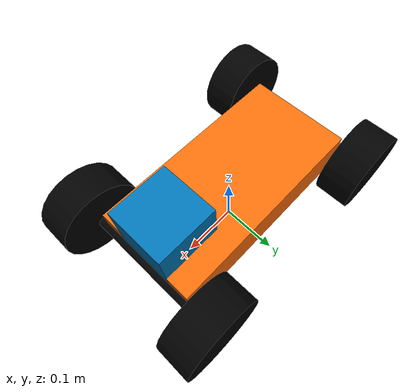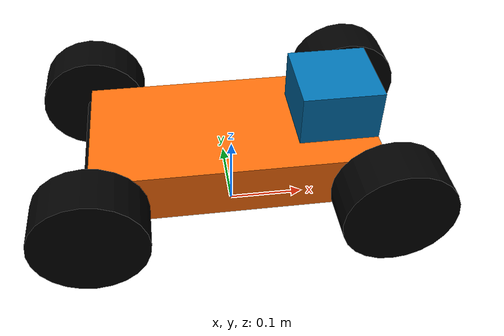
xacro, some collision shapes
<?xml version="1.0"?>
<robot name="tas_car" xmlns:xacro="http://www.ros.org/wiki/xacro">
    <!-- CAR DESCRIPTION -->

        <!-- Physical properties. -->
        <xacro:property name="degrees_21" value="0.3665191429"/>
        <xacro:property name="degrees_45" value="0.785398163"/>
        <xacro:property name="degrees_90" value="1.57079633"/>
        <xacro:property name="PI" value="3.1415926535897931"/>

        <!-- Chassis. -->
        <xacro:property name="chassis_length" value="0.358"/>
        <xacro:property name="chassis_width" value="0.18"/>
        <xacro:property name="chassis_height" value="0.068"/>
        <xacro:property name="chassis_mass" value="3"/>

        <!-- Axle. -->
        <xacro:property name="axle_length" value="${chassis_width + 0.02}" />
        <xacro:property name="axle_radius" value="0.01" />
        <xacro:property name="axle_mass" value="0.2" />

        <!-- Motors. -->
        <xacro:property name="front_axle_eff_limit" value="2" />
        <xacro:property name="rear_axle_eff_limit" value="8" />
        <xacro:property name="axle_vel_limit" value="100" />

        <!-- These constants are used to simulate a  Savox SV-0235MG servo operated at
       7.4 V. servo_stall_torque is measured in N m. servo_no_load_speed is
       measured in rad/s. -->
        <!-- produces 486.1 oz-in = 3.432620346181713 n-m of torque -->
        <!-- no load speed 0.13 sec/60 deg -> (1/0.13)*60 deg/sec = 8.05536578 rad/s -->
        <xacro:property name="servo_stall_torque" value="3.432620346181713" />
        <xacro:property name="servo_no_load_speed" value="8.05536578" />

        <!-- Wheels. -->
        <xacro:property name="wheel_width" value="0.059"/>
        <xacro:property name="wheel_radius" value="0.0695"/>
        <xacro:property name="wheel_pos" value="0.179"/>
        <xacro:property name="wheel_mass" value="0.5"/>

        <xacro:property name="wheelOffsetX" value="0.179" />
        <xacro:property name="wheelOffsetY" value="0.1815" />

        <!-- Camera. -->
        <xacro:property name="cameraSize" value="0.05"/>
        <xacro:property name="cameraMass" value="0.1"/>

        <!-- Include files. -->
        <xacro:include filename="$(find tas_car_description)/urdf/tas_car.gazebo" />
        <xacro:include filename="$(find tas_car_description)/urdf/materials.xacro" />
        <xacro:include filename="$(find tas_car_description)/urdf/macros.xacro" />

        <!-- Robot description. -->

        <!-- The physics engine does not accept a base_link with inertia. Add a simple link without inertia and make a joint between it and the chassis. -->
        <link name="base_link">
        </link>

        <joint name="base_joint" type="fixed">
            <parent link="base_link"/>
            <child link="chassis"/>
        </joint>

        <link name="chassis">
            <collision>
                <origin xyz="0 0 ${wheel_radius}" rpy="0 0 0"/>
                <geometry>
                  <box size="${chassis_length} ${chassis_width} ${chassis_height}"/>
                </geometry>
            </collision>

            <visual>
                <origin xyz="0 0 ${wheel_radius + chassis_height/2}" rpy="0 0 0"/>
                <geometry>
                    <box size="${chassis_length} ${chassis_width} ${chassis_height}"/>
                </geometry>
                <material name="orange"/>
            </visual>

            <inertial>
                <origin xyz="0 0 ${wheel_radius}" rpy="0 0 0"/>
                <mass value="${chassis_mass}"/>
                <box_inertia m="${chassis_mass}" x="${chassis_length}" y="${chassis_width}" z="${chassis_height}"/>
            </inertial>
        </link>

        <!-- Create the axles on which we put the wheels. -->
        <axle fr_prefix="front" fr_position="1" />
        <axle fr_prefix="rear" fr_position="-1" />

        <front_wheel    lr_prefix="left"
                        fr_prefix="front"
                        lr_position="-1"
                        fr_position="1"
                        wheel_radius="${wheel_radius}"
                        wheel_mass="${wheel_mass}"
                        axle_eff_limit="${front_axle_eff_limit}"
        />

        <front_wheel    lr_prefix="right"
                        fr_prefix="front"
                        lr_position="1"
                        fr_position="1"
                        wheel_radius="${wheel_radius}"
                        wheel_mass="${wheel_mass}"
                        axle_eff_limit="${front_axle_eff_limit}"
        />

        <rear_wheel lr_prefix="right"
                    fr_prefix="rear"
                    lr_position="1"
                    fr_position="-1"
                    wheel_radius="${wheel_radius}"
                    wheel_mass="${wheel_mass}"
                    axle_eff_limit="${front_axle_eff_limit}"
        />

        <rear_wheel lr_prefix="left"
                    fr_prefix="rear"
                    lr_position="-1"
                    fr_position="-1"
                    wheel_radius="${wheel_radius}"
                    wheel_mass="${wheel_mass}"
                    axle_eff_limit="${front_axle_eff_limit}"
        />

    <!-- CAR DESCRIPTION END -->

    <!-- SENSORS -->

        <!-- Camera. -->

        <!-- Laser Scanner. -->
        <joint name="hokuyo_joint" type="fixed">
            <axis xyz="0 1 0" />
            <origin xyz="${-cameraSize+chassis_length/2} 0 ${cameraSize+wheel_radius + chassis_height/2}" rpy="0 0 0"/>
            <parent link="chassis"/>
            <child link="hokuyo_link"/>
        </joint>

        <!-- Hokuyo Laser -->
        <link name="hokuyo_link">
            <collision>
                <origin xyz="0 0 0" rpy="0 0 0"/>
                <geometry>
                    <box size="0.1 0.1 0.1"/>
                </geometry>
            </collision>

            <visual>
                <origin xyz="0 0 0" rpy="0 0 0"/>
                <geometry>
                    <mesh filename="file://$(find tas_car_description)/meshes/hokuyo.dae"/>
                </geometry>
            </visual>

            <inertial>
                <mass value="1e-5" />
                <origin xyz="0 0 0" rpy="0 0 0"/>
                <inertia ixx="1e-6" ixy="0" ixz="0" iyy="1e-6" iyz="0" izz="1e-6" />
            </inertial>
        </link>
    <!-- SENSOR END -->
</robot>

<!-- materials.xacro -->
<robot>
    <material name="black">
       <color rgba="0.0 0.0 0.0 1.0"/>
    </material>

    <material name="blue">
       <color rgba="0.0 0.0 0.8 1.0"/>
    </material>

    <material name="green">
       <color rgba="0.0 0.8 0.0 1.0"/>
    </material>

    <material name="grey">
       <color rgba="0.2 0.2 0.2 1.0"/>
    </material>

    <material name="orange">
       <color rgba="${255/255} ${108/255} ${10/255} 1.0"/>
    </material>

    <material name="brown">
        <color rgba="${222/255} ${207/255} ${195/255} 1.0"/>
    </material>

    <material name="red">
        <color rgba="0.8 0.0 0.0 1.0"/>
    </material>

    <material name="white">
        <color rgba="1.0 1.0 1.0 1.0"/>
    </material>

    <material name="chassis_mat">
        <color rgba="0.5 0.5 0.5 1"/>
    </material>
</robot>

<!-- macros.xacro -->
<robot>

<!-- Null inertia macro. -->
    <macro name="null_inertial">
        <inertial>
            <origin xyz="0 0 0" rpy="0 0 0"/>
            <mass value="0.001"/>
            <inertia ixx="0.001" ixy="0" ixz="0" iyy="0.001" iyz="0" izz="0.001"/>
        </inertial>
    </macro>

<!-- Cylinder inertia macro. -->
    <macro name="cylinder_inertia" params="m r h">
        <inertia  ixx="${m*(3*r*r+h*h)/12}" ixy = "0" ixz = "0" iyy="${m*(3*r*r+h*h)/12}" iyz = "0" izz="${m*r*r/2}" />
    </macro>

<!-- Box inertia macro. -->
    <macro name="box_inertia" params="m x y z">
        <inertia  ixx="${m*(y*y+z*z)/12}" ixy = "0" ixz = "0" iyy="${m*(x*x+z*z)/12}" iyz = "0" izz="${m*(x*x+z*z)/12}" />
    </macro>

<!-- Sphere inertia macro. -->
    <macro name="sphere_inertia" params="m r">
        <inertia  ixx="${2*m*r*r/5}" ixy = "0" ixz = "0" iyy="${2*m*r*r/5}" iyz = "0" izz="${2*m*r*r/5}" />
    </macro>

<!-- Axle macro. -->
    <macro name="axle" params="fr_prefix fr_position">
        <link name="${fr_prefix}_axle">
            <collision>
                <origin xyz="0 0 0" rpy="${PI/2} 0 0" />
                <geometry>
                    <cylinder length="${axle_length}" radius="${axle_radius}"/>
                </geometry>
            </collision>

            <visual>
                <origin xyz="0 0 0" rpy="${PI/2} 0 0" />
                <geometry>
                    <cylinder length="${axle_length}" radius="${axle_radius}"/>
                </geometry>
                <material name="black"/>
            </visual>

            <inertial>
                <origin xyz="0 0 0" rpy="${PI/2} 0 0" />
                <mass value="${wheel_mass}"/>
                <cylinder_inertia m="${axle_mass}" r="${axle_radius}" h="${axle_length}"/>
            </inertial>
        </link>

        <joint name="${fr_prefix}_axle_joint" type="fixed">
            <origin xyz="${fr_position * chassis_length / 2} 0 ${wheel_radius + chassis_height/2}" rpy="0 0 0" />
            <parent link="chassis"/>
            <child link="${fr_prefix}_axle"/>
        </joint>
    </macro>

<!-- Wheel Macro. -->
    <macro name="wheel" params="fr_prefix lr_prefix tX tY fr_axle fr_axle_position axle_eff_limit">
        <!-- Params: front-back left-right translationX translationY -->

        <link name="${fr_prefix}_${lr_prefix}_wheel">
            <collision>
                <origin xyz="0 0 0" rpy="0 0 ${PI/2}" />
                <geometry>
                    <cylinder length="${wheel_width}" radius="${wheel_radius}"/>
                </geometry>
            </collision>

            <visual>
                <origin xyz="0 0 0" rpy="0 ${PI/2} ${PI/2}" />
                <geometry>
                    <cylinder length="${wheel_width}" radius="${wheel_radius}"/>
                </geometry>
                <material name="black"/>
            </visual>

            <inertial>
                <origin xyz="0 0 0" rpy="0 ${PI/2} ${PI/2}" />
                <mass value="${wheel_mass}"/>
                <cylinder_inertia m="${wheel_mass}" r="${wheel_radius}" h="${wheel_width}"/>
            </inertial>

            <max_contacts>1</max_contacts>

            <surface>
                <contact>
                    <ode>
                        <soft_cfm>0.000000001</soft_cfm>
                        <soft_erp>0.2</soft_erp>
                        <kp>1e+10</kp>
                        <kd>10</kd>
                        <max_vel>0.01</max_vel>
                        <min_depth>0.005</min_depth>
                    </ode>
                </contact>
            </surface>
        </link>

        <gazebo reference="${fr_prefix}_${lr_prefix}_wheel">
            <!-- Define friction of the wheel. -->
            <mu1>0.7</mu1>
            <mu2>0.75</mu2>

            <material>Gazebo/Black</material>
        </gazebo>
    </macro>

<!-- Front wheel macro. -->
    <macro name="front_wheel"
            params="lr_prefix fr_prefix lr_position fr_position wheel_radius wheel_mass axle_eff_limit">

            <link name="${fr_prefix}_${lr_prefix}_steering_link">
                <null_inertial/>
            </link>

            <!-- Add the steering_link to the axle. -->
            <joint name="${fr_prefix}_${lr_prefix}_steering_to_chassis_joint" type="fixed">
                <parent link="${fr_prefix}_axle"/>
                <child link="${fr_prefix}_${lr_prefix}_steering_link"/>

                <origin xyz="0 ${lr_position*(axle_length/2)} 0" rpy="0 0 0" />
            </joint>

            <!-- Add wheel carrier. -->
            <link name="${fr_prefix}_${lr_prefix}_wheel_carrier">
                <null_inertial />
            </link>

            <!-- Add the joint for steering. -->
            <joint name="${fr_prefix}_${lr_prefix}_steering_joint" type="revolute">
                <origin xyz="0 0 0" rpy="0 0 0" />
                <parent link="${fr_prefix}_${lr_prefix}_steering_link"/>
                <child link="${fr_prefix}_${lr_prefix}_wheel_carrier" />

                <!-- cant the front wheels to improve traction -->
                <axis xyz="0 ${-lr_position * 0.09950372}  0.99503719"/>
                <limit  lower="0" upper="0"
                        effort="${servo_stall_torque}" velocity="${servo_no_load_speed}"/>
            </joint>

            <transmission name="${lr_prefix}_steering_trans">
                <type>transmission_interface/SimpleTransmission</type>

                <joint name="${fr_prefix}_${lr_prefix}_steering_joint">
                    <hardwareInterface>EffortJointInterface</hardwareInterface>
                </joint>

                <actuator name="${lr_prefix}_steering_act">
                    <hardwareInterface>EffortJointInterface</hardwareInterface>
                    <mechanicalReduction>1</mechanicalReduction>
                </actuator>
            </transmission>

            <!-- Add the wheel. -->
            <wheel  fr_prefix="${fr_prefix}"
                    lr_prefix="${lr_prefix}"
                    tX="${fr_position}"
                    tY="${lr_position}"
                    fr_axle="${fr_prefix}"
                    fr_axle_position="${fr_position}"
                    axle_eff_limit="${axle_eff_limit}"
            />

            <!-- Add the wheel joint. -->
            <joint name="${fr_prefix}_${lr_prefix}_wheel_joint" type="continuous">
                <parent link="${fr_prefix}_${lr_prefix}_wheel_carrier" />
                <child link="${fr_prefix}_${lr_prefix}_wheel"/>
                <origin xyz="0 ${lr_position*(wheel_width/2)} 0" ryp="0 0 0" />

                <axis xyz="0 1 0" rpy="0 0 0" />
                <limit effort="${axle_eff_limit}" velocity="${axle_vel_limit}"/>
                <!-- Damping and friction of the joint. -->
                <dynamics damping="0.5" friction="1.5"/>
            </joint>

            <transmission name="${fr_prefix}_${lr_prefix}_trans">
                <type>transmission_interface/SimpleTransmission</type>

                <joint name="${fr_prefix}_${lr_prefix}_wheel_joint">
                    <hardwareInterface>EffortJointInterface</hardwareInterface>
                </joint>

                <actuator name="${fr_prefix}_${lr_prefix}_axle_act">
                <hardwareInterface>EffortJointInterface</hardwareInterface>
                <mechanicalReduction>1</mechanicalReduction>
                </actuator>
            </transmission>
    </macro>

<!-- Rear wheel -->
    <macro  name="rear_wheel"
            params="lr_prefix fr_prefix lr_position fr_position wheel_radius wheel_mass axle_eff_limit">

        <!-- Add the wheel. -->
        <wheel  fr_prefix="${fr_prefix}"
                lr_prefix="${lr_prefix}"
                tX="${fr_position}"
                tY="${lr_position}"
                fr_axle="${fr_prefix}"
                fr_axle_position="${fr_position}"
                axle_eff_limit="${axle_eff_limit}"
        />

        <joint name="${fr_prefix}_${lr_prefix}_wheel_axle" type="continuous">
            <parent link="${fr_prefix}_axle"/>
            <child link="${fr_prefix}_${lr_prefix}_wheel"/>
            <origin xyz="0 ${lr_position*(axle_length/2) + lr_position*(wheel_width/2)} 0" ryp="0 0 0" />
            <!-- Add -0.01 to align the wheels. -->
            <axis xyz="0 1 0" rpy="0 0 0" />
            <limit effort="${axle_eff_limit}" velocity="${axle_vel_limit}"/>
            <dynamics damping="0.001" friction="0.5"/>
        </joint>

        <transmission name="${fr_prefix}_${lr_prefix}_trans">
            <type>transmission_interface/SimpleTransmission</type>

            <joint name="${fr_prefix}_${lr_prefix}_wheel_axle">
                <hardwareInterface>EffortJointInterface</hardwareInterface>
            </joint>

            <actuator name="${fr_prefix}_${lr_prefix}_axle_act">
            <hardwareInterface>EffortJointInterface</hardwareInterface>
            <mechanicalReduction>1</mechanicalReduction>
            </actuator>
        </transmission>
    </macro>

</robot>
